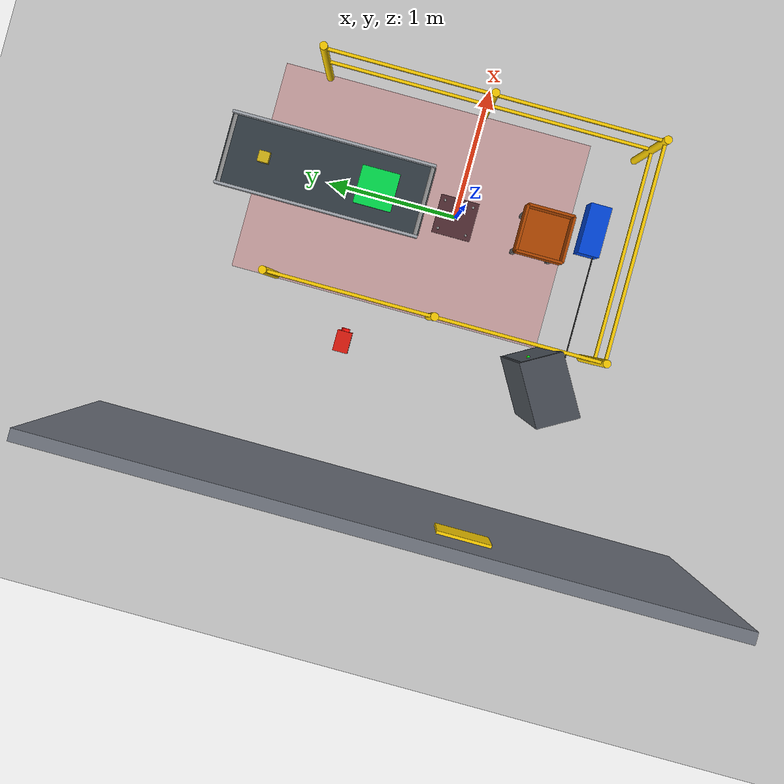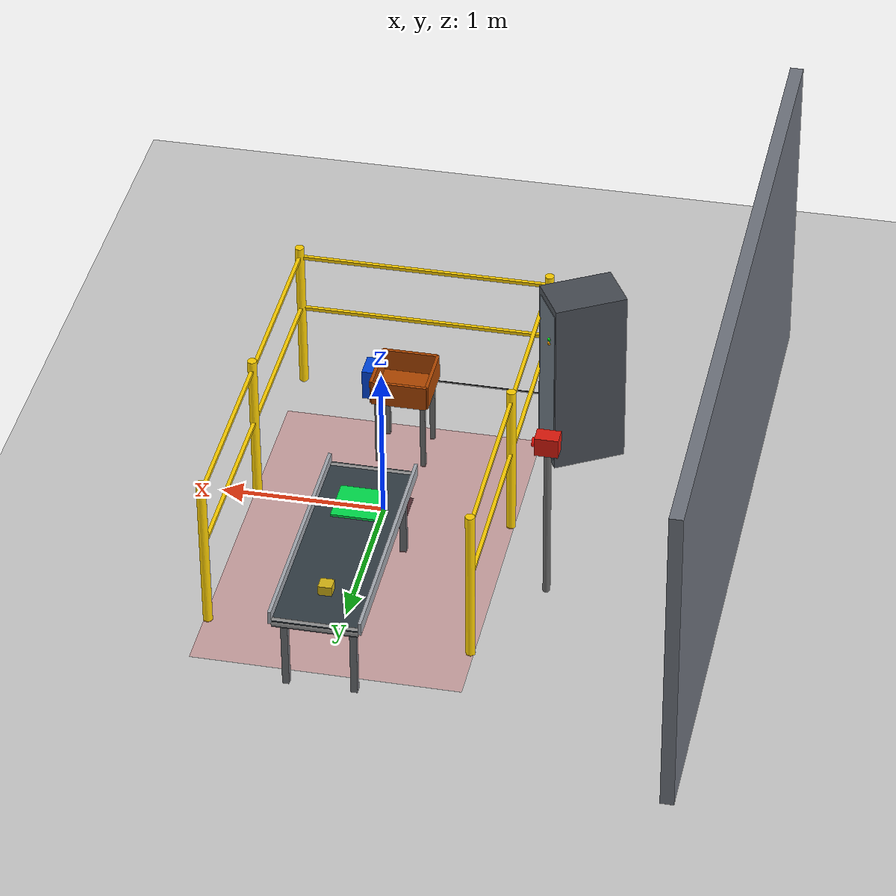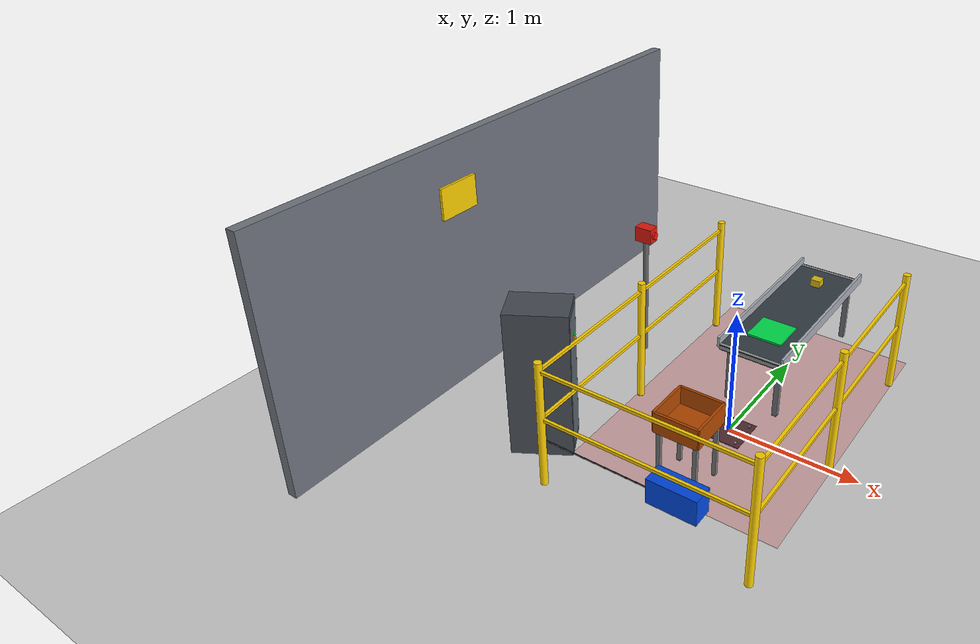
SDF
<?xml version="1.0" ?>
<sdf version="1.7">
  <world name="lab_cell">

    <!-- ── physics ──────────────────────────────────────────── -->
    <physics name="ode_step" type="ode">
      <max_step_size>0.008</max_step_size>
      <real_time_factor>1.0</real_time_factor>
      <real_time_update_rate>120</real_time_update_rate>
      <ode>
        <solver>
          <type>quick</type>
          <iters>50</iters>
          <sor>1.3</sor>
        </solver>
        <constraints>
          <cfm>0</cfm>
          <erp>0.2</erp>
          <contact_max_correcting_vel>100</contact_max_correcting_vel>
          <contact_surface_layer>0.001</contact_surface_layer>
        </constraints>
      </ode>
    </physics>
    <gravity>0 0 -9.81</gravity>

    <!-- ── ground ──────────────────────────────────────────── -->
    <include>
      <uri>model://ground_plane</uri>
    </include>

    <!-- ── LIGHTING ─────────────────────────────────────────── -->
    <!-- Key sun: warm, angled, casts shadows for depth -->
    <light type="directional" name="sun_key">
      <pose>0 0 10 0 0 0</pose>
      <diffuse>0.95 0.92 0.85 1</diffuse>
      <specular>0.35 0.32 0.28 1</specular>
      <cast_shadows>true</cast_shadows>
      <direction>-0.6 0.2 -0.75</direction>
      <attenuation><range>1000</range><constant>0.9</constant><linear>0.01</linear><quadratic>0.001</quadratic></attenuation>
    </light>

    <!-- Fill light: cool blue-grey from opposite side, softens harsh shadows -->
    <light type="directional" name="fill_cool">
      <pose>0 0 8 0 0 0</pose>
      <diffuse>0.35 0.40 0.55 1</diffuse>
      <specular>0.05 0.05 0.10 1</specular>
      <cast_shadows>false</cast_shadows>
      <direction>0.5 -0.3 -0.8</direction>
    </light>

    <!-- Overhead spot: simulates factory ceiling light above robot cell -->
    <light type="point" name="cell_overhead">
      <pose>0 0 3.5 0 0 0</pose>
      <diffuse>0.80 0.85 0.90 1</diffuse>
      <specular>0.20 0.22 0.25 1</specular>
      <cast_shadows>false</cast_shadows>
      <attenuation>
        <range>6.0</range>
        <constant>0.5</constant>
        <linear>0.12</linear>
        <quadratic>0.04</quadratic>
      </attenuation>
    </light>

    <!-- ── ROBOT MOUNTING PEDESTAL ──────────────────────────── -->
    <!-- Steel pedestal: robot base_link sits on top of this -->
    <model name="00_robot_pedestal">
      <static>true</static>
      <pose>0 0 0 0 0 0</pose>
      <link name="ped_body">
        <visual name="v">
          <geometry><box><size>0.30 0.30 0.02</size></box></geometry>
          <material>
            <ambient>0.15 0.16 0.18 1</ambient>
            <diffuse>0.20 0.22 0.25 1</diffuse>
            <specular>0.40 0.40 0.42 1</specular>
          </material>
        </visual>
        <collision name="c">
          <geometry><box><size>0.30 0.30 0.02</size></box></geometry>
        </collision>
        <pose>0 0 -0.01 0 0 0</pose>
      </link>
      <!-- anchor bolts (decorative, 4 corners) -->
      <link name="bolt_fl"><pose> 0.11  0.11 0.005 0 0 0</pose>
        <visual name="v"><geometry><cylinder><radius>0.010</radius><length>0.01</length></cylinder></geometry>
          <material><ambient>0.5 0.5 0.5 1</ambient><diffuse>0.6 0.6 0.6 1</diffuse></material></visual>
      </link>
      <link name="bolt_fr"><pose> 0.11 -0.11 0.005 0 0 0</pose>
        <visual name="v"><geometry><cylinder><radius>0.010</radius><length>0.01</length></cylinder></geometry>
          <material><ambient>0.5 0.5 0.5 1</ambient><diffuse>0.6 0.6 0.6 1</diffuse></material></visual>
      </link>
      <link name="bolt_bl"><pose>-0.11  0.11 0.005 0 0 0</pose>
        <visual name="v"><geometry><cylinder><radius>0.010</radius><length>0.01</length></cylinder></geometry>
          <material><ambient>0.5 0.5 0.5 1</ambient><diffuse>0.6 0.6 0.6 1</diffuse></material></visual>
      </link>
      <link name="bolt_br"><pose>-0.11 -0.11 0.005 0 0 0</pose>
        <visual name="v"><geometry><cylinder><radius>0.010</radius><length>0.01</length></cylinder></geometry>
          <material><ambient>0.5 0.5 0.5 1</ambient><diffuse>0.6 0.6 0.6 1</diffuse></material></visual>
      </link>
    </model>

    <!-- ── CONVEYOR BELT WITH TABLE LEGS ────────────────────── -->
    <!-- Conveyor runs NORTH (+Y). Centre at Y=+1.0. Belt 0.50m E-W x 1.5m N-S. -->
    <model name="01_conveyor_belt">
      <static>true</static>
      <pose>0 1.0 0.5 0 0 0</pose>
      <link name="belt_surface">
        <visual name="v">
          <geometry><box><size>0.50 1.5 0.04</size></box></geometry>
          <material>
            <ambient>0.16 0.19 0.21 1</ambient>
            <diffuse>0.20 0.24 0.27 1</diffuse>
            <specular>0.25 0.25 0.28 1</specular>
          </material>
        </visual>
        <collision name="c">
          <geometry><box><size>0.50 1.5 0.04</size></box></geometry>
        </collision>
      </link>
      <!-- belt roller north end (Y=+0.73 local) — cylinder spans E-W -->
      <link name="roller_north">
        <pose>0 0.73 0 0 1.5708 0</pose>
        <visual name="v">
          <geometry><cylinder><radius>0.025</radius><length>0.50</length></cylinder></geometry>
          <material><ambient>0.45 0.45 0.45 1</ambient><diffuse>0.55 0.55 0.55 1</diffuse></material>
        </visual>
      </link>
      <!-- belt roller south end (Y=-0.73 local) -->
      <link name="roller_south">
        <pose>0 -0.73 0 0 1.5708 0</pose>
        <visual name="v">
          <geometry><cylinder><radius>0.025</radius><length>0.50</length></cylinder></geometry>
          <material><ambient>0.45 0.45 0.45 1</ambient><diffuse>0.55 0.55 0.55 1</diffuse></material>
        </visual>
      </link>
      <!-- East guard rail -->
      <link name="guard_e">
        <pose>0.26 0 0.04 0 0 0</pose>
        <visual name="v">
          <geometry><box><size>0.02 1.5 0.08</size></box></geometry>
          <material><ambient>0.60 0.62 0.65 1</ambient><diffuse>0.65 0.67 0.70 1</diffuse></material>
        </visual>
      </link>
      <!-- West guard rail -->
      <link name="guard_w">
        <pose>-0.26 0 0.04 0 0 0</pose>
        <visual name="v">
          <geometry><box><size>0.02 1.5 0.08</size></box></geometry>
          <material><ambient>0.60 0.62 0.65 1</ambient><diffuse>0.65 0.67 0.70 1</diffuse></material>
        </visual>
      </link>
    </model>

    <!-- Conveyor support legs — centred at Y=+1.0, legs offset in N/S, E/W -->
    <model name="01b_conveyor_legs">
      <static>true</static>
      <pose>0 1.0 0 0 0 0</pose>
      <link name="leg_ne"><pose> 0.20  0.65 0.24 0 0 0</pose>
        <visual name="v"><geometry><box><size>0.04 0.04 0.48</size></box></geometry>
          <material><ambient>0.35 0.36 0.38 1</ambient><diffuse>0.42 0.43 0.45 1</diffuse></material></visual>
        <collision name="c"><geometry><box><size>0.04 0.04 0.48</size></box></geometry></collision>
      </link>
      <link name="leg_nw"><pose>-0.20  0.65 0.24 0 0 0</pose>
        <visual name="v"><geometry><box><size>0.04 0.04 0.48</size></box></geometry>
          <material><ambient>0.35 0.36 0.38 1</ambient><diffuse>0.42 0.43 0.45 1</diffuse></material></visual>
        <collision name="c"><geometry><box><size>0.04 0.04 0.48</size></box></geometry></collision>
      </link>
      <link name="leg_se"><pose> 0.20 -0.65 0.24 0 0 0</pose>
        <visual name="v"><geometry><box><size>0.04 0.04 0.48</size></box></geometry>
          <material><ambient>0.35 0.36 0.38 1</ambient><diffuse>0.42 0.43 0.45 1</diffuse></material></visual>
        <collision name="c"><geometry><box><size>0.04 0.04 0.48</size></box></geometry></collision>
      </link>
      <link name="leg_sw"><pose>-0.20 -0.65 0.24 0 0 0</pose>
        <visual name="v"><geometry><box><size>0.04 0.04 0.48</size></box></geometry>
          <material><ambient>0.35 0.36 0.38 1</ambient><diffuse>0.42 0.43 0.45 1</diffuse></material></visual>
        <collision name="c"><geometry><box><size>0.04 0.04 0.48</size></box></geometry></collision>
      </link>
    </model>

    <!-- ── PICK ZONE — bright green marker (South, Y=+0.62) ─── -->
    <model name="02_pick_zone_green">
      <static>true</static>
      <pose>0 0.62 0.525 0 0 0</pose>
      <link name="link">
        <visual name="v">
          <geometry><box><size>0.28 0.28 0.02</size></box></geometry>
          <material>
            <ambient>0.00 0.60 0.20 1</ambient>
            <diffuse>0.00 0.88 0.30 1</diffuse>
            <emissive>0.00 0.12 0.04 1</emissive>
          </material>
        </visual>
        <collision name="c"><geometry><box><size>0.28 0.28 0.02</size></box></geometry></collision>
      </link>
    </model>

    <!-- Work piece sitting on pick zone (North, Y=+1.45) — what the arm picks -->
    <model name="02b_work_piece">
      <static>true</static>
      <pose>0 1.45 0.565 0 0 0</pose>
      <link name="link">
        <visual name="v">
          <geometry><box><size>0.08 0.08 0.06</size></box></geometry>
          <material>
            <ambient>0.65 0.55 0.05 1</ambient>
            <diffuse>0.85 0.72 0.08 1</diffuse>
            <specular>0.30 0.26 0.05 1</specular>
          </material>
        </visual>
        <collision name="c"><geometry><box><size>0.08 0.08 0.06</size></box></geometry></collision>
        <inertial><mass value="0.1"/><inertia ixx="0.0001" ixy="0" ixz="0" iyy="0.0001" iyz="0" izz="0.0001"/></inertial>
      </link>
    </model>

    <!-- ── DROP BIN (South, Y=-0.62) ─────────────────────────── -->
    <!-- Drop bin — orange walls, open top -->
    <model name="03_drop_bin">
      <static>true</static>
      <pose>0 -0.62 0 0 0 0</pose>
      <!-- bin floor -->
      <link name="floor">
        <pose>0 0 0.46 0 0 0</pose>
        <visual name="v">
          <geometry><box><size>0.34 0.34 0.02</size></box></geometry>
          <material><ambient>0.55 0.20 0.00 1</ambient><diffuse>0.70 0.28 0.00 1</diffuse></material>
        </visual>
        <collision name="c"><geometry><box><size>0.34 0.34 0.02</size></box></geometry></collision>
      </link>
      <!-- bin walls -->
      <link name="wall_f"><pose> 0.17 0 0.53 0 0 0</pose>
        <visual name="v"><geometry><box><size>0.02 0.34 0.16</size></box></geometry>
          <material><ambient>0.55 0.20 0.00 1</ambient><diffuse>0.70 0.28 0.00 1</diffuse></material></visual>
        <collision name="c"><geometry><box><size>0.02 0.34 0.16</size></box></geometry></collision>
      </link>
      <link name="wall_b"><pose>-0.17 0 0.53 0 0 0</pose>
        <visual name="v"><geometry><box><size>0.02 0.34 0.16</size></box></geometry>
          <material><ambient>0.55 0.20 0.00 1</ambient><diffuse>0.70 0.28 0.00 1</diffuse></material></visual>
        <collision name="c"><geometry><box><size>0.02 0.34 0.16</size></box></geometry></collision>
      </link>
      <link name="wall_l"><pose>0  0.17 0.53 0 0 0</pose>
        <visual name="v"><geometry><box><size>0.34 0.02 0.16</size></box></geometry>
          <material><ambient>0.55 0.20 0.00 1</ambient><diffuse>0.70 0.28 0.00 1</diffuse></material></visual>
        <collision name="c"><geometry><box><size>0.34 0.02 0.16</size></box></geometry></collision>
      </link>
      <link name="wall_r"><pose>0 -0.17 0.53 0 0 0</pose>
        <visual name="v"><geometry><box><size>0.34 0.02 0.16</size></box></geometry>
          <material><ambient>0.55 0.20 0.00 1</ambient><diffuse>0.70 0.28 0.00 1</diffuse></material></visual>
        <collision name="c"><geometry><box><size>0.34 0.02 0.16</size></box></geometry></collision>
      </link>
      <!-- bin legs -->
      <link name="leg_fl"><pose> 0.14  0.14 0.23 0 0 0</pose>
        <visual name="v"><geometry><box><size>0.03 0.03 0.46</size></box></geometry>
          <material><ambient>0.35 0.35 0.35 1</ambient><diffuse>0.45 0.45 0.45 1</diffuse></material></visual>
      </link>
      <link name="leg_fr"><pose> 0.14 -0.14 0.23 0 0 0</pose>
        <visual name="v"><geometry><box><size>0.03 0.03 0.46</size></box></geometry>
          <material><ambient>0.35 0.35 0.35 1</ambient><diffuse>0.45 0.45 0.45 1</diffuse></material></visual>
      </link>
      <link name="leg_bl"><pose>-0.14  0.14 0.23 0 0 0</pose>
        <visual name="v"><geometry><box><size>0.03 0.03 0.46</size></box></geometry>
          <material><ambient>0.35 0.35 0.35 1</ambient><diffuse>0.45 0.45 0.45 1</diffuse></material></visual>
      </link>
      <link name="leg_br"><pose>-0.14 -0.14 0.23 0 0 0</pose>
        <visual name="v"><geometry><box><size>0.03 0.03 0.46</size></box></geometry>
          <material><ambient>0.35 0.35 0.35 1</ambient><diffuse>0.45 0.45 0.45 1</diffuse></material></visual>
      </link>
    </model>

    <!-- ── SAFETY ENVELOPE FLOOR MARKING (N-S layout) ────────── -->
    <model name="04_safety_floor_marking">
      <static>true</static>
      <pose>0 0.35 0.003 0 0 0</pose>
      <link name="link">
        <visual name="v">
          <geometry><box><size>1.6 2.4 0.003</size></box></geometry>
          <material>
            <ambient>0.70 0.04 0.04 0.20</ambient>
            <diffuse>0.85 0.04 0.04 0.20</diffuse>
            <transparency>0.78</transparency>
          </material>
        </visual>
        <collision name="c"><geometry><box><size>1.6 2.4 0.003</size></box></geometry></collision>
      </link>
    </model>

    <!-- ── SAFETY FENCE (N-S layout, 90° rotated) ──────────────── -->
    <!-- Conveyor enters from NORTH (Y=+1.20), so North side is OPEN.           -->
    <!-- South side (Y=-1.20) is closed.  East (X=+0.78) and West (X=-0.78)    -->
    <!-- have full rails with mid-posts.                                         -->
    <model name="05_safety_fence">
      <static>true</static>
      <pose>0 0 0 0 0 0</pose>

      <!-- Corner posts: 4 corners + 2 mid-posts on East/West sides -->
      <link name="post_ne">  <pose> 0.78  1.20 0.50 0 0 0</pose>
        <visual name="v"><geometry><cylinder><radius>0.028</radius><length>1.00</length></cylinder></geometry>
          <material><ambient>0.90 0.75 0.00 1</ambient><diffuse>1.00 0.82 0.00 1</diffuse></material></visual>
        <collision name="c"><geometry><cylinder><radius>0.028</radius><length>1.00</length></cylinder></geometry></collision>
      </link>
      <link name="post_nw">  <pose>-0.78  1.20 0.50 0 0 0</pose>
        <visual name="v"><geometry><cylinder><radius>0.028</radius><length>1.00</length></cylinder></geometry>
          <material><ambient>0.90 0.75 0.00 1</ambient><diffuse>1.00 0.82 0.00 1</diffuse></material></visual>
        <collision name="c"><geometry><cylinder><radius>0.028</radius><length>1.00</length></cylinder></geometry></collision>
      </link>
      <link name="post_se">  <pose> 0.78 -1.20 0.50 0 0 0</pose>
        <visual name="v"><geometry><cylinder><radius>0.028</radius><length>1.00</length></cylinder></geometry>
          <material><ambient>0.90 0.75 0.00 1</ambient><diffuse>1.00 0.82 0.00 1</diffuse></material></visual>
        <collision name="c"><geometry><cylinder><radius>0.028</radius><length>1.00</length></cylinder></geometry></collision>
      </link>
      <link name="post_sw">  <pose>-0.78 -1.20 0.50 0 0 0</pose>
        <visual name="v"><geometry><cylinder><radius>0.028</radius><length>1.00</length></cylinder></geometry>
          <material><ambient>0.90 0.75 0.00 1</ambient><diffuse>1.00 0.82 0.00 1</diffuse></material></visual>
        <collision name="c"><geometry><cylinder><radius>0.028</radius><length>1.00</length></cylinder></geometry></collision>
      </link>
      <!-- Mid-posts on East and West sides -->
      <link name="post_em">  <pose> 0.78  0.00 0.50 0 0 0</pose>
        <visual name="v"><geometry><cylinder><radius>0.028</radius><length>1.00</length></cylinder></geometry>
          <material><ambient>0.90 0.75 0.00 1</ambient><diffuse>1.00 0.82 0.00 1</diffuse></material></visual>
        <collision name="c"><geometry><cylinder><radius>0.028</radius><length>1.00</length></cylinder></geometry></collision>
      </link>
      <link name="post_wm">  <pose>-0.78  0.00 0.50 0 0 0</pose>
        <visual name="v"><geometry><cylinder><radius>0.028</radius><length>1.00</length></cylinder></geometry>
          <material><ambient>0.90 0.75 0.00 1</ambient><diffuse>1.00 0.82 0.00 1</diffuse></material></visual>
        <collision name="c"><geometry><cylinder><radius>0.028</radius><length>1.00</length></cylinder></geometry></collision>
      </link>

      <!-- East fence rails (x=+0.78) — N half and S half, each 1.20 m long N-S -->
      <link name="rail_en_top"><pose> 0.78  0.60 0.93 0 0 0</pose>
        <visual name="v"><geometry><box><size>0.022 1.20 0.022</size></box></geometry>
          <material><ambient>0.90 0.75 0.00 1</ambient><diffuse>1.00 0.82 0.00 1</diffuse></material></visual>
      </link>
      <link name="rail_en_mid"><pose> 0.78  0.60 0.55 0 0 0</pose>
        <visual name="v"><geometry><box><size>0.022 1.20 0.022</size></box></geometry>
          <material><ambient>0.90 0.75 0.00 1</ambient><diffuse>1.00 0.82 0.00 1</diffuse></material></visual>
      </link>
      <link name="rail_es_top"><pose> 0.78 -0.60 0.93 0 0 0</pose>
        <visual name="v"><geometry><box><size>0.022 1.20 0.022</size></box></geometry>
          <material><ambient>0.90 0.75 0.00 1</ambient><diffuse>1.00 0.82 0.00 1</diffuse></material></visual>
      </link>
      <link name="rail_es_mid"><pose> 0.78 -0.60 0.55 0 0 0</pose>
        <visual name="v"><geometry><box><size>0.022 1.20 0.022</size></box></geometry>
          <material><ambient>0.90 0.75 0.00 1</ambient><diffuse>1.00 0.82 0.00 1</diffuse></material></visual>
      </link>

      <!-- West fence rails (x=-0.78) -->
      <link name="rail_wn_top"><pose>-0.78  0.60 0.93 0 0 0</pose>
        <visual name="v"><geometry><box><size>0.022 1.20 0.022</size></box></geometry>
          <material><ambient>0.90 0.75 0.00 1</ambient><diffuse>1.00 0.82 0.00 1</diffuse></material></visual>
      </link>
      <link name="rail_wn_mid"><pose>-0.78  0.60 0.55 0 0 0</pose>
        <visual name="v"><geometry><box><size>0.022 1.20 0.022</size></box></geometry>
          <material><ambient>0.90 0.75 0.00 1</ambient><diffuse>1.00 0.82 0.00 1</diffuse></material></visual>
      </link>
      <link name="rail_ws_top"><pose>-0.78 -0.60 0.93 0 0 0</pose>
        <visual name="v"><geometry><box><size>0.022 1.20 0.022</size></box></geometry>
          <material><ambient>0.90 0.75 0.00 1</ambient><diffuse>1.00 0.82 0.00 1</diffuse></material></visual>
      </link>
      <link name="rail_ws_mid"><pose>-0.78 -0.60 0.55 0 0 0</pose>
        <visual name="v"><geometry><box><size>0.022 1.20 0.022</size></box></geometry>
          <material><ambient>0.90 0.75 0.00 1</ambient><diffuse>1.00 0.82 0.00 1</diffuse></material></visual>
      </link>

      <!-- South fence rail (y=-1.20) — full span E-W, closes the South side -->
      <link name="rail_south_top"> <pose>0 -1.20 0.93 0 0 0</pose>
        <visual name="v"><geometry><box><size>1.56 0.022 0.022</size></box></geometry>
          <material><ambient>0.90 0.75 0.00 1</ambient><diffuse>1.00 0.82 0.00 1</diffuse></material></visual>
      </link>
      <link name="rail_south_mid"> <pose>0 -1.20 0.55 0 0 0</pose>
        <visual name="v"><geometry><box><size>1.56 0.022 0.022</size></box></geometry>
          <material><ambient>0.90 0.75 0.00 1</ambient><diffuse>1.00 0.82 0.00 1</diffuse></material></visual>
      </link>
      <!-- North side is OPEN — conveyor belt passes through here -->
    </model>

    <!-- ── CONTROL CABINET ───────────────────────────────────── -->
    <!-- Robot controller enclosure — grey box, off to the side -->
    <model name="07_control_cabinet">
      <static>true</static>
      <pose>-1.05 -0.85 0 0 0 0.52</pose>
      <link name="cabinet_body">
        <pose>0 0 0.58 0 0 0</pose>
        <visual name="v">
          <geometry><box><size>0.45 0.30 1.16</size></box></geometry>
          <material>
            <ambient>0.22 0.24 0.26 1</ambient>
            <diffuse>0.28 0.30 0.33 1</diffuse>
            <specular>0.15 0.15 0.16 1</specular>
          </material>
        </visual>
        <collision name="c"><geometry><box><size>0.45 0.30 1.16</size></box></geometry></collision>
      </link>
      <!-- cabinet door panel (slightly lighter) -->
      <link name="cabinet_door">
        <pose>0.225 0 0.58 0 0 0</pose>
        <visual name="v">
          <geometry><box><size>0.005 0.26 1.06</size></box></geometry>
          <material>
            <ambient>0.35 0.38 0.42 1</ambient>
            <diffuse>0.40 0.44 0.48 1</diffuse>
          </material>
        </visual>
      </link>
      <!-- status LEDs row -->
      <link name="led_green">
        <pose>0.228  0.05 0.90 0 0 0</pose>
        <visual name="v"><geometry><cylinder><radius>0.012</radius><length>0.01</length></cylinder></geometry>
          <material><ambient>0.0 0.9 0.1 1</ambient><diffuse>0.0 1.0 0.1 1</diffuse><emissive>0.0 0.5 0.05 1</emissive></material></visual>
      </link>
      <link name="led_amber">
        <pose>0.228  0.05 0.87 0 0 0</pose>
        <visual name="v"><geometry><cylinder><radius>0.012</radius><length>0.01</length></cylinder></geometry>
          <material><ambient>0.9 0.6 0.0 1</ambient><diffuse>1.0 0.65 0.0 1</diffuse><emissive>0.4 0.25 0.0 1</emissive></material></visual>
      </link>
    </model>

    <!-- ── E-STOP PANEL ──────────────────────────────────────── -->
    <!-- Emergency stop pedestal mounted at cell entrance -->
    <model name="08_estop_panel">
      <static>true</static>
      <pose>-1.10 0.55 0 0 0 0</pose>
      <!-- stand post -->
      <link name="stand">
        <pose>0 0 0.55 0 0 0</pose>
        <visual name="v"><geometry><cylinder><radius>0.022</radius><length>1.10</length></cylinder></geometry>
          <material><ambient>0.30 0.30 0.30 1</ambient><diffuse>0.40 0.40 0.40 1</diffuse></material></visual>
        <collision name="c"><geometry><cylinder><radius>0.022</radius><length>1.10</length></cylinder></geometry></collision>
      </link>
      <!-- panel box -->
      <link name="panel">
        <pose>0 0 1.08 0 0 0</pose>
        <visual name="v"><geometry><box><size>0.14 0.10 0.12</size></box></geometry>
          <material><ambient>0.70 0.08 0.04 1</ambient><diffuse>0.88 0.10 0.05 1</diffuse></material></visual>
        <collision name="c"><geometry><box><size>0.14 0.10 0.12</size></box></geometry></collision>
      </link>
      <!-- large mushroom E-stop button -->
      <link name="estop_button">
        <pose>0.072 0 1.08 0 1.5708 0</pose>
        <visual name="v"><geometry><cylinder><radius>0.028</radius><length>0.035</length></cylinder></geometry>
          <material><ambient>0.85 0.04 0.02 1</ambient><diffuse>1.00 0.05 0.02 1</diffuse><emissive>0.40 0.01 0.00 1</emissive></material></visual>
      </link>
    </model>

    <!-- ── NETWORK TAP (Zeek/Suricata sensor box) ────────────── -->
    <model name="06_network_tap">
      <static>true</static>
      <pose>0.15 -1.00 0 0 0 0</pose>
      <!-- sensor box body -->
      <link name="box">
        <pose>0 0 0.22 0 0 0</pose>
        <visual name="v">
          <geometry><box><size>0.38 0.16 0.20</size></box></geometry>
          <material>
            <ambient>0.00 0.18 0.65 1</ambient>
            <diffuse>0.00 0.28 0.88 1</diffuse>
            <specular>0.10 0.18 0.45 1</specular>
          </material>
        </visual>
        <collision name="c"><geometry><box><size>0.38 0.16 0.20</size></box></geometry></collision>
      </link>
      <!-- label panel (lighter blue strip) -->
      <link name="label">
        <pose>0.082 0 0.26 0 0 0</pose>
        <visual name="v">
          <geometry><box><size>0.006 0.12 0.06</size></box></geometry>
          <material><ambient>0.50 0.70 1.00 1</ambient><diffuse>0.60 0.80 1.00 1</diffuse></material>
        </visual>
      </link>
      <!-- status LEDs -->
      <link name="tap_led1"><pose>0.082 0.04 0.22 0 0 0</pose>
        <visual name="v"><geometry><sphere><radius>0.008</radius></sphere></geometry>
          <material><ambient>0.0 1.0 0.3 1</ambient><diffuse>0.0 1.0 0.3 1</diffuse><emissive>0.0 0.6 0.1 1</emissive></material></visual>
      </link>
      <link name="tap_led2"><pose>0.082 0.02 0.22 0 0 0</pose>
        <visual name="v"><geometry><sphere><radius>0.008</radius></sphere></geometry>
          <material><ambient>1.0 0.6 0.0 1</ambient><diffuse>1.0 0.6 0.0 1</diffuse><emissive>0.5 0.3 0.0 1</emissive></material></visual>
      </link>
      <!-- cable (thin cylinder) connecting to cabinet -->
      <link name="cable">
        <pose>-0.55 -0.05 0.22 0 1.5708 0</pose>
        <visual name="v"><geometry><cylinder><radius>0.005</radius><length>1.10</length></cylinder></geometry>
          <material><ambient>0.10 0.10 0.10 1</ambient><diffuse>0.15 0.15 0.15 1</diffuse></material></visual>
      </link>
    </model>

    <!-- ── FACTORY BACK WALL ─────────────────────────────────── -->
    <model name="09_back_wall">
      <static>true</static>
      <pose>-2.10 0 1.0 0 0 0</pose>
      <link name="wall">
        <visual name="v">
          <geometry><box><size>0.08 4.5 2.0</size></box></geometry>
          <material>
            <ambient>0.38 0.40 0.43 1</ambient>
            <diffuse>0.44 0.46 0.50 1</diffuse>
          </material>
        </visual>
        <collision name="c"><geometry><box><size>0.08 4.5 2.0</size></box></geometry></collision>
      </link>
    </model>

    <!-- ── SAFETY SIGN on back wall ─────────────────────────── -->
    <model name="09b_safety_sign">
      <static>true</static>
      <pose>-2.05 -0.5 1.55 0 0 0</pose>
      <link name="sign">
        <visual name="v">
          <geometry><box><size>0.02 0.35 0.25</size></box></geometry>
          <material>
            <ambient>0.90 0.75 0.00 1</ambient>
            <diffuse>1.00 0.82 0.00 1</diffuse>
          </material>
        </visual>
      </link>
    </model>

    <!-- Robot arm spawned here by spawn_entity.py (launch.py); not embedded. -->

    <!-- ── CAMERA VIEW ────────────────────────────────────────── -->
    <!-- Angled 3/4 view from SE: shows N-S arm sweep, conveyor (North) and drop bin (South) -->
    <gui fullscreen="0">
      <camera name="user_camera">
        <pose>2.20 -2.80 2.20 0 0.46 2.10</pose>
        <clip><near>0.05</near><far>200</far></clip>
      </camera>
    </gui>

    <!-- ROS 2 State Plugin to expose SetModelConfiguration service -->
    <plugin name="gazebo_ros_state" filename="libgazebo_ros_state.so">
      <ros>
        <namespace>/gazebo</namespace>
      </ros>
    </plugin>

  </world>
</sdf>
